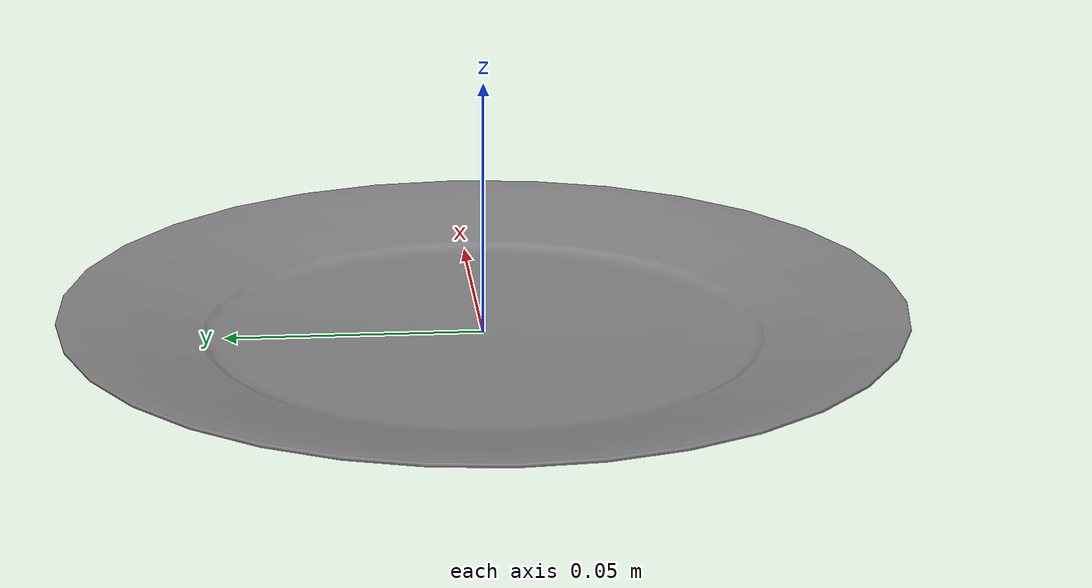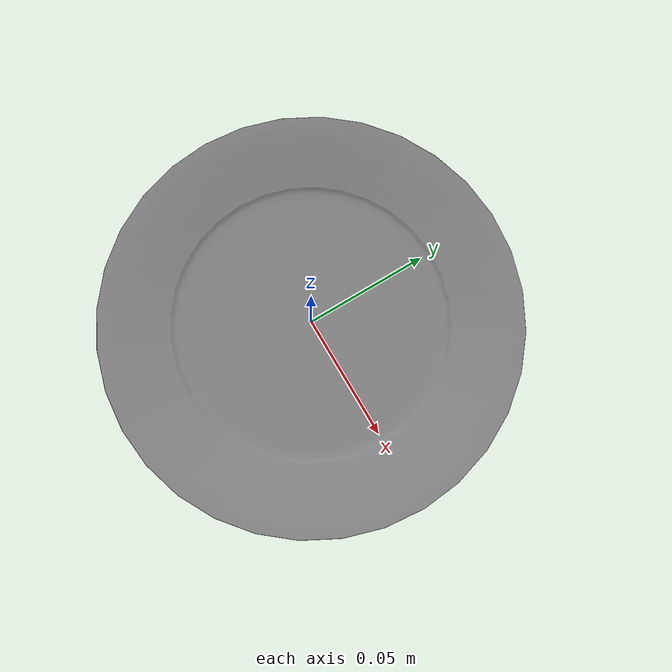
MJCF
<mujoco model="classic_plate_16cm">
    <compiler angle="radian" meshdir="../meshes/" texturedir="../textures/" autolimits="true" inertiafromgeom="false"/>
    <asset>
        <mesh name="ClassicPlate16cm" file="obj/ClassicPlate16cm.obj" />
        <mesh name="UCX_ClassicPlate16cm_001" file="stl/UCX_ClassicPlate16cm_001.stl" />
		<mesh name="UCX_ClassicPlate16cm_002" file="stl/UCX_ClassicPlate16cm_002.stl" />
		<mesh name="UCX_ClassicPlate16cm_003" file="stl/UCX_ClassicPlate16cm_003.stl" />
		<mesh name="UCX_ClassicPlate16cm_004" file="stl/UCX_ClassicPlate16cm_004.stl" />
		<mesh name="UCX_ClassicPlate16cm_005" file="stl/UCX_ClassicPlate16cm_005.stl" />
		<mesh name="UCX_ClassicPlate16cm_006" file="stl/UCX_ClassicPlate16cm_006.stl" />
		<mesh name="UCX_ClassicPlate16cm_007" file="stl/UCX_ClassicPlate16cm_007.stl" />
		<mesh name="UCX_ClassicPlate16cm_008" file="stl/UCX_ClassicPlate16cm_008.stl" />
		<mesh name="UCX_ClassicPlate16cm_009" file="stl/UCX_ClassicPlate16cm_009.stl" />
		<mesh name="UCX_ClassicPlate16cm_010" file="stl/UCX_ClassicPlate16cm_010.stl" />
		<mesh name="UCX_ClassicPlate16cm_011" file="stl/UCX_ClassicPlate16cm_011.stl" />
		<mesh name="UCX_ClassicPlate16cm_012" file="stl/UCX_ClassicPlate16cm_012.stl" />
		<mesh name="UCX_ClassicPlate16cm_013" file="stl/UCX_ClassicPlate16cm_013.stl" />
		<mesh name="UCX_ClassicPlate16cm_014" file="stl/UCX_ClassicPlate16cm_014.stl" />
		<mesh name="UCX_ClassicPlate16cm_015" file="stl/UCX_ClassicPlate16cm_015.stl" />
		<mesh name="UCX_ClassicPlate16cm_016" file="stl/UCX_ClassicPlate16cm_016.stl" />
		<mesh name="UCX_ClassicPlate16cm_017" file="stl/UCX_ClassicPlate16cm_017.stl" />
		<mesh name="UCX_ClassicPlate16cm_018" file="stl/UCX_ClassicPlate16cm_018.stl" />
		<mesh name="UCX_ClassicPlate16cm_019" file="stl/UCX_ClassicPlate16cm_019.stl" />
		<mesh name="UCX_ClassicPlate16cm_020" file="stl/UCX_ClassicPlate16cm_020.stl" />
		<mesh name="UCX_ClassicPlate16cm_021" file="stl/UCX_ClassicPlate16cm_021.stl" />
		<mesh name="UCX_ClassicPlate16cm_022" file="stl/UCX_ClassicPlate16cm_022.stl" />
		<mesh name="UCX_ClassicPlate16cm_023" file="stl/UCX_ClassicPlate16cm_023.stl" />
		<mesh name="UCX_ClassicPlate16cm_024" file="stl/UCX_ClassicPlate16cm_024.stl" />
		<mesh name="UCX_ClassicPlate16cm_025" file="stl/UCX_ClassicPlate16cm_025.stl" />
		<mesh name="UCX_ClassicPlate16cm_026" file="stl/UCX_ClassicPlate16cm_026.stl" />
		<mesh name="UCX_ClassicPlate16cm_027" file="stl/UCX_ClassicPlate16cm_027.stl" />
		<mesh name="UCX_ClassicPlate16cm_028" file="stl/UCX_ClassicPlate16cm_028.stl" />
		<mesh name="UCX_ClassicPlate16cm_029" file="stl/UCX_ClassicPlate16cm_029.stl" />
		<mesh name="UCX_ClassicPlate16cm_030" file="stl/UCX_ClassicPlate16cm_030.stl" />
		<mesh name="UCX_ClassicPlate16cm_031" file="stl/UCX_ClassicPlate16cm_031.stl" />
		<mesh name="UCX_ClassicPlate16cm_032" file="stl/UCX_ClassicPlate16cm_032.stl" />
		<mesh name="UCX_ClassicPlate16cm_033" file="stl/UCX_ClassicPlate16cm_033.stl" />
		<mesh name="UCX_ClassicPlate16cm_034" file="stl/UCX_ClassicPlate16cm_034.stl" />
		<mesh name="UCX_ClassicPlate16cm_035" file="stl/UCX_ClassicPlate16cm_035.stl" />
		<mesh name="UCX_ClassicPlate16cm_036" file="stl/UCX_ClassicPlate16cm_036.stl" />
		<mesh name="UCX_ClassicPlate16cm_037" file="stl/UCX_ClassicPlate16cm_037.stl" />
		<mesh name="UCX_ClassicPlate16cm_038" file="stl/UCX_ClassicPlate16cm_038.stl" />
		<mesh name="UCX_ClassicPlate16cm_039" file="stl/UCX_ClassicPlate16cm_039.stl" />
		<mesh name="UCX_ClassicPlate16cm_040" file="stl/UCX_ClassicPlate16cm_040.stl" />
		<mesh name="UCX_ClassicPlate16cm_041" file="stl/UCX_ClassicPlate16cm_041.stl" />
		<mesh name="UCX_ClassicPlate16cm_042" file="stl/UCX_ClassicPlate16cm_042.stl" />
		<mesh name="UCX_ClassicPlate16cm_043" file="stl/UCX_ClassicPlate16cm_043.stl" />
		<mesh name="UCX_ClassicPlate16cm_044" file="stl/UCX_ClassicPlate16cm_044.stl" />
		<mesh name="UCX_ClassicPlate16cm_045" file="stl/UCX_ClassicPlate16cm_045.stl" />
		<mesh name="UCX_ClassicPlate16cm_046" file="stl/UCX_ClassicPlate16cm_046.stl" />
		<mesh name="UCX_ClassicPlate16cm_047" file="stl/UCX_ClassicPlate16cm_047.stl" />
		<mesh name="UCX_ClassicPlate16cm_048" file="stl/UCX_ClassicPlate16cm_048.stl" />
		<mesh name="UCX_ClassicPlate16cm_049" file="stl/UCX_ClassicPlate16cm_049.stl" />
		<mesh name="UCX_ClassicPlate16cm_050" file="stl/UCX_ClassicPlate16cm_050.stl" />
		<mesh name="UCX_ClassicPlate16cm_051" file="stl/UCX_ClassicPlate16cm_051.stl" />
		<mesh name="UCX_ClassicPlate16cm_052" file="stl/UCX_ClassicPlate16cm_052.stl" />
		<mesh name="UCX_ClassicPlate16cm_053" file="stl/UCX_ClassicPlate16cm_053.stl" />
		<mesh name="UCX_ClassicPlate16cm_054" file="stl/UCX_ClassicPlate16cm_054.stl" />
		<mesh name="UCX_ClassicPlate16cm_055" file="stl/UCX_ClassicPlate16cm_055.stl" />
		<mesh name="UCX_ClassicPlate16cm_056" file="stl/UCX_ClassicPlate16cm_056.stl" />
		<mesh name="UCX_ClassicPlate16cm_057" file="stl/UCX_ClassicPlate16cm_057.stl" />
		<mesh name="UCX_ClassicPlate16cm_058" file="stl/UCX_ClassicPlate16cm_058.stl" />
		<mesh name="UCX_ClassicPlate16cm_059" file="stl/UCX_ClassicPlate16cm_059.stl" />
		<mesh name="UCX_ClassicPlate16cm_060" file="stl/UCX_ClassicPlate16cm_060.stl" />
		<mesh name="UCX_ClassicPlate16cm_061" file="stl/UCX_ClassicPlate16cm_061.stl" />
		<mesh name="UCX_ClassicPlate16cm_062" file="stl/UCX_ClassicPlate16cm_062.stl" />
		<mesh name="UCX_ClassicPlate16cm_063" file="stl/UCX_ClassicPlate16cm_063.stl" />
		<mesh name="UCX_ClassicPlate16cm_064" file="stl/UCX_ClassicPlate16cm_064.stl" />
		<mesh name="UCX_ClassicPlate16cm_065" file="stl/UCX_ClassicPlate16cm_065.stl" />
		<mesh name="UCX_ClassicPlate16cm_066" file="stl/UCX_ClassicPlate16cm_066.stl" />
		<mesh name="UCX_ClassicPlate16cm_067" file="stl/UCX_ClassicPlate16cm_067.stl" />
		<mesh name="UCX_ClassicPlate16cm_068" file="stl/UCX_ClassicPlate16cm_068.stl" />
		<mesh name="UCX_ClassicPlate16cm_069" file="stl/UCX_ClassicPlate16cm_069.stl" />
		<mesh name="UCX_ClassicPlate16cm_070" file="stl/UCX_ClassicPlate16cm_070.stl" />
		<mesh name="UCX_ClassicPlate16cm_071" file="stl/UCX_ClassicPlate16cm_071.stl" />
		<mesh name="UCX_ClassicPlate16cm_072" file="stl/UCX_ClassicPlate16cm_072.stl" />
		<mesh name="UCX_ClassicPlate16cm_073" file="stl/UCX_ClassicPlate16cm_073.stl" />
		<mesh name="UCX_ClassicPlate16cm_074" file="stl/UCX_ClassicPlate16cm_074.stl" />
		<mesh name="UCX_ClassicPlate16cm_075" file="stl/UCX_ClassicPlate16cm_075.stl" />
		<mesh name="UCX_ClassicPlate16cm_076" file="stl/UCX_ClassicPlate16cm_076.stl" />
		<mesh name="UCX_ClassicPlate16cm_077" file="stl/UCX_ClassicPlate16cm_077.stl" />
		<mesh name="UCX_ClassicPlate16cm_078" file="stl/UCX_ClassicPlate16cm_078.stl" />
		<mesh name="UCX_ClassicPlate16cm_079" file="stl/UCX_ClassicPlate16cm_079.stl" />
		<mesh name="UCX_ClassicPlate16cm_080" file="stl/UCX_ClassicPlate16cm_080.stl" />
		<mesh name="UCX_ClassicPlate16cm_081" file="stl/UCX_ClassicPlate16cm_081.stl" />
		<mesh name="UCX_ClassicPlate16cm_082" file="stl/UCX_ClassicPlate16cm_082.stl" />
		<mesh name="UCX_ClassicPlate16cm_083" file="stl/UCX_ClassicPlate16cm_083.stl" />
		<mesh name="UCX_ClassicPlate16cm_084" file="stl/UCX_ClassicPlate16cm_084.stl" />
		<mesh name="UCX_ClassicPlate16cm_085" file="stl/UCX_ClassicPlate16cm_085.stl" />
		<mesh name="UCX_ClassicPlate16cm_086" file="stl/UCX_ClassicPlate16cm_086.stl" />
		<mesh name="UCX_ClassicPlate16cm_087" file="stl/UCX_ClassicPlate16cm_087.stl" />
		<mesh name="UCX_ClassicPlate16cm_088" file="stl/UCX_ClassicPlate16cm_088.stl" />
		<mesh name="UCX_ClassicPlate16cm_089" file="stl/UCX_ClassicPlate16cm_089.stl" />
		<mesh name="UCX_ClassicPlate16cm_090" file="stl/UCX_ClassicPlate16cm_090.stl" />
		<mesh name="UCX_ClassicPlate16cm_091" file="stl/UCX_ClassicPlate16cm_091.stl" />
		<mesh name="UCX_ClassicPlate16cm_092" file="stl/UCX_ClassicPlate16cm_092.stl" />
		<mesh name="UCX_ClassicPlate16cm_093" file="stl/UCX_ClassicPlate16cm_093.stl" />
		<mesh name="UCX_ClassicPlate16cm_094" file="stl/UCX_ClassicPlate16cm_094.stl" />
		<mesh name="UCX_ClassicPlate16cm_095" file="stl/UCX_ClassicPlate16cm_095.stl" />
		<mesh name="UCX_ClassicPlate16cm_096" file="stl/UCX_ClassicPlate16cm_096.stl" />
		<mesh name="UCX_ClassicPlate16cm_097" file="stl/UCX_ClassicPlate16cm_097.stl" />
		<mesh name="UCX_ClassicPlate16cm_098" file="stl/UCX_ClassicPlate16cm_098.stl" />
		<mesh name="UCX_ClassicPlate16cm_099" file="stl/UCX_ClassicPlate16cm_099.stl" />
		<mesh name="UCX_ClassicPlate16cm_100" file="stl/UCX_ClassicPlate16cm_100.stl" />
		<mesh name="UCX_ClassicPlate16cm_101" file="stl/UCX_ClassicPlate16cm_101.stl" />
		<mesh name="UCX_ClassicPlate16cm_102" file="stl/UCX_ClassicPlate16cm_102.stl" />
		<mesh name="UCX_ClassicPlate16cm_103" file="stl/UCX_ClassicPlate16cm_103.stl" />
		<mesh name="UCX_ClassicPlate16cm_104" file="stl/UCX_ClassicPlate16cm_104.stl" />
		<mesh name="UCX_ClassicPlate16cm_105" file="stl/UCX_ClassicPlate16cm_105.stl" />
		<mesh name="UCX_ClassicPlate16cm_106" file="stl/UCX_ClassicPlate16cm_106.stl" />
		<mesh name="UCX_ClassicPlate16cm_107" file="stl/UCX_ClassicPlate16cm_107.stl" />
		<mesh name="UCX_ClassicPlate16cm_108" file="stl/UCX_ClassicPlate16cm_108.stl" />
		<mesh name="UCX_ClassicPlate16cm_109" file="stl/UCX_ClassicPlate16cm_109.stl" />
		<mesh name="UCX_ClassicPlate16cm_110" file="stl/UCX_ClassicPlate16cm_110.stl" />
		<mesh name="UCX_ClassicPlate16cm_111" file="stl/UCX_ClassicPlate16cm_111.stl" />
		<mesh name="UCX_ClassicPlate16cm_112" file="stl/UCX_ClassicPlate16cm_112.stl" />
		<mesh name="UCX_ClassicPlate16cm_113" file="stl/UCX_ClassicPlate16cm_113.stl" />
		<mesh name="UCX_ClassicPlate16cm_114" file="stl/UCX_ClassicPlate16cm_114.stl" />
		<mesh name="UCX_ClassicPlate16cm_115" file="stl/UCX_ClassicPlate16cm_115.stl" />
		<mesh name="UCX_ClassicPlate16cm_116" file="stl/UCX_ClassicPlate16cm_116.stl" />
		<mesh name="UCX_ClassicPlate16cm_117" file="stl/UCX_ClassicPlate16cm_117.stl" />
		<mesh name="UCX_ClassicPlate16cm_118" file="stl/UCX_ClassicPlate16cm_118.stl" />
		<mesh name="UCX_ClassicPlate16cm_119" file="stl/UCX_ClassicPlate16cm_119.stl" />
		<mesh name="UCX_ClassicPlate16cm_120" file="stl/UCX_ClassicPlate16cm_120.stl" />
		<mesh name="UCX_ClassicPlate16cm_121" file="stl/UCX_ClassicPlate16cm_121.stl" />
		<mesh name="UCX_ClassicPlate16cm_122" file="stl/UCX_ClassicPlate16cm_122.stl" />
		<mesh name="UCX_ClassicPlate16cm_123" file="stl/UCX_ClassicPlate16cm_123.stl" />
		<mesh name="UCX_ClassicPlate16cm_124" file="stl/UCX_ClassicPlate16cm_124.stl" />
		<mesh name="UCX_ClassicPlate16cm_125" file="stl/UCX_ClassicPlate16cm_125.stl" />
		<mesh name="UCX_ClassicPlate16cm_126" file="stl/UCX_ClassicPlate16cm_126.stl" />
		<mesh name="UCX_ClassicPlate16cm_127" file="stl/UCX_ClassicPlate16cm_127.stl" />
		<mesh name="UCX_ClassicPlate16cm_128" file="stl/UCX_ClassicPlate16cm_128.stl" />
		<mesh name="UCX_ClassicPlate16cm_129" file="stl/UCX_ClassicPlate16cm_129.stl" />
    </asset>
    <default>
        <default class="classic_plate_16cm_visual">
            <geom contype="0" conaffinity="0" />
        </default>
        <default class="classic_plate_16cm_collision">
            <geom rgba="0.9 0.9 0.9 0.0" />
        </default>
    </default>
    <worldbody>
        <body name="classic_plate_16cm">
            <freejoint />
            <inertial mass="0.018585756421089172" pos="-7.083365926519036e-05 6.187615753106002e-08 0.00010110304720001295" diaginertia="2.932031566160731e-05 2.932080860773567e-05 5.842446626047604e-05"/>
            <geom name="ClassicPlate16cm" pos="0.0 0.0 0.0" quat="1.0 0.0 0.0 0.0" type="mesh" mesh="ClassicPlate16cm" class="classic_plate_16cm_visual" />
            <geom name="UCX_ClassicPlate16cm_001" type="mesh" pos="0.0 0.0 0.0" quat="1.0 0.0 0.0 0.0" mesh="UCX_ClassicPlate16cm_001" class="classic_plate_16cm_collision"/>
            <geom name="UCX_ClassicPlate16cm_002" type="mesh" pos="0.0 0.0 0.0" quat="1.0 0.0 0.0 0.0" mesh="UCX_ClassicPlate16cm_002" class="classic_plate_16cm_collision"/>
            <geom name="UCX_ClassicPlate16cm_003" type="mesh" pos="0.0 0.0 0.0" quat="1.0 0.0 0.0 0.0" mesh="UCX_ClassicPlate16cm_003" class="classic_plate_16cm_collision"/>
            <geom name="UCX_ClassicPlate16cm_004" type="mesh" pos="0.0 0.0 0.0" quat="1.0 0.0 0.0 0.0" mesh="UCX_ClassicPlate16cm_004" class="classic_plate_16cm_collision"/>
            <geom name="UCX_ClassicPlate16cm_005" type="mesh" pos="0.0 0.0 0.0" quat="1.0 0.0 0.0 0.0" mesh="UCX_ClassicPlate16cm_005" class="classic_plate_16cm_collision"/>
            <geom name="UCX_ClassicPlate16cm_006" type="mesh" pos="0.0 0.0 0.0" quat="1.0 0.0 0.0 0.0" mesh="UCX_ClassicPlate16cm_006" class="classic_plate_16cm_collision"/>
            <geom name="UCX_ClassicPlate16cm_007" type="mesh" pos="0.0 0.0 0.0" quat="1.0 0.0 0.0 0.0" mesh="UCX_ClassicPlate16cm_007" class="classic_plate_16cm_collision"/>
            <geom name="UCX_ClassicPlate16cm_008" type="mesh" pos="0.0 0.0 0.0" quat="1.0 0.0 0.0 0.0" mesh="UCX_ClassicPlate16cm_008" class="classic_plate_16cm_collision"/>
            <geom name="UCX_ClassicPlate16cm_009" type="mesh" pos="0.0 0.0 0.0" quat="1.0 0.0 0.0 0.0" mesh="UCX_ClassicPlate16cm_009" class="classic_plate_16cm_collision"/>
            <geom name="UCX_ClassicPlate16cm_010" type="mesh" pos="0.0 0.0 0.0" quat="1.0 0.0 0.0 0.0" mesh="UCX_ClassicPlate16cm_010" class="classic_plate_16cm_collision"/>
            <geom name="UCX_ClassicPlate16cm_011" type="mesh" pos="0.0 0.0 0.0" quat="1.0 0.0 0.0 0.0" mesh="UCX_ClassicPlate16cm_011" class="classic_plate_16cm_collision"/>
            <geom name="UCX_ClassicPlate16cm_012" type="mesh" pos="0.0 0.0 0.0" quat="1.0 0.0 0.0 0.0" mesh="UCX_ClassicPlate16cm_012" class="classic_plate_16cm_collision"/>
            <geom name="UCX_ClassicPlate16cm_013" type="mesh" pos="0.0 0.0 0.0" quat="1.0 0.0 0.0 0.0" mesh="UCX_ClassicPlate16cm_013" class="classic_plate_16cm_collision"/>
            <geom name="UCX_ClassicPlate16cm_014" type="mesh" pos="0.0 0.0 0.0" quat="1.0 0.0 0.0 0.0" mesh="UCX_ClassicPlate16cm_014" class="classic_plate_16cm_collision"/>
            <geom name="UCX_ClassicPlate16cm_015" type="mesh" pos="0.0 0.0 0.0" quat="1.0 0.0 0.0 0.0" mesh="UCX_ClassicPlate16cm_015" class="classic_plate_16cm_collision"/>
            <geom name="UCX_ClassicPlate16cm_016" type="mesh" pos="0.0 0.0 0.0" quat="1.0 0.0 0.0 0.0" mesh="UCX_ClassicPlate16cm_016" class="classic_plate_16cm_collision"/>
            <geom name="UCX_ClassicPlate16cm_017" type="mesh" pos="0.0 0.0 0.0" quat="1.0 0.0 0.0 0.0" mesh="UCX_ClassicPlate16cm_017" class="classic_plate_16cm_collision"/>
            <geom name="UCX_ClassicPlate16cm_018" type="mesh" pos="0.0 0.0 0.0" quat="1.0 0.0 0.0 0.0" mesh="UCX_ClassicPlate16cm_018" class="classic_plate_16cm_collision"/>
            <geom name="UCX_ClassicPlate16cm_019" type="mesh" pos="0.0 0.0 0.0" quat="1.0 0.0 0.0 0.0" mesh="UCX_ClassicPlate16cm_019" class="classic_plate_16cm_collision"/>
            <geom name="UCX_ClassicPlate16cm_020" type="mesh" pos="0.0 0.0 0.0" quat="1.0 0.0 0.0 0.0" mesh="UCX_ClassicPlate16cm_020" class="classic_plate_16cm_collision"/>
            <geom name="UCX_ClassicPlate16cm_021" type="mesh" pos="0.0 0.0 0.0" quat="1.0 0.0 0.0 0.0" mesh="UCX_ClassicPlate16cm_021" class="classic_plate_16cm_collision"/>
            <geom name="UCX_ClassicPlate16cm_022" type="mesh" pos="0.0 0.0 0.0" quat="1.0 0.0 0.0 0.0" mesh="UCX_ClassicPlate16cm_022" class="classic_plate_16cm_collision"/>
            <geom name="UCX_ClassicPlate16cm_023" type="mesh" pos="0.0 0.0 0.0" quat="1.0 0.0 0.0 0.0" mesh="UCX_ClassicPlate16cm_023" class="classic_plate_16cm_collision"/>
            <geom name="UCX_ClassicPlate16cm_024" type="mesh" pos="0.0 0.0 0.0" quat="1.0 0.0 0.0 0.0" mesh="UCX_ClassicPlate16cm_024" class="classic_plate_16cm_collision"/>
            <geom name="UCX_ClassicPlate16cm_025" type="mesh" pos="0.0 0.0 0.0" quat="1.0 0.0 0.0 0.0" mesh="UCX_ClassicPlate16cm_025" class="classic_plate_16cm_collision"/>
            <geom name="UCX_ClassicPlate16cm_026" type="mesh" pos="0.0 0.0 0.0" quat="1.0 0.0 0.0 0.0" mesh="UCX_ClassicPlate16cm_026" class="classic_plate_16cm_collision"/>
            <geom name="UCX_ClassicPlate16cm_027" type="mesh" pos="0.0 0.0 0.0" quat="1.0 0.0 0.0 0.0" mesh="UCX_ClassicPlate16cm_027" class="classic_plate_16cm_collision"/>
            <geom name="UCX_ClassicPlate16cm_028" type="mesh" pos="0.0 0.0 0.0" quat="1.0 0.0 0.0 0.0" mesh="UCX_ClassicPlate16cm_028" class="classic_plate_16cm_collision"/>
            <geom name="UCX_ClassicPlate16cm_029" type="mesh" pos="0.0 0.0 0.0" quat="1.0 0.0 0.0 0.0" mesh="UCX_ClassicPlate16cm_029" class="classic_plate_16cm_collision"/>
            <geom name="UCX_ClassicPlate16cm_030" type="mesh" pos="0.0 0.0 0.0" quat="1.0 0.0 0.0 0.0" mesh="UCX_ClassicPlate16cm_030" class="classic_plate_16cm_collision"/>
            <geom name="UCX_ClassicPlate16cm_031" type="mesh" pos="0.0 0.0 0.0" quat="1.0 0.0 0.0 0.0" mesh="UCX_ClassicPlate16cm_031" class="classic_plate_16cm_collision"/>
            <geom name="UCX_ClassicPlate16cm_032" type="mesh" pos="0.0 0.0 0.0" quat="1.0 0.0 0.0 0.0" mesh="UCX_ClassicPlate16cm_032" class="classic_plate_16cm_collision"/>
            <geom name="UCX_ClassicPlate16cm_033" type="mesh" pos="0.0 0.0 0.0" quat="1.0 0.0 0.0 0.0" mesh="UCX_ClassicPlate16cm_033" class="classic_plate_16cm_collision"/>
            <geom name="UCX_ClassicPlate16cm_034" type="mesh" pos="0.0 0.0 0.0" quat="1.0 0.0 0.0 0.0" mesh="UCX_ClassicPlate16cm_034" class="classic_plate_16cm_collision"/>
            <geom name="UCX_ClassicPlate16cm_035" type="mesh" pos="0.0 0.0 0.0" quat="1.0 0.0 0.0 0.0" mesh="UCX_ClassicPlate16cm_035" class="classic_plate_16cm_collision"/>
            <geom name="UCX_ClassicPlate16cm_036" type="mesh" pos="0.0 0.0 0.0" quat="1.0 0.0 0.0 0.0" mesh="UCX_ClassicPlate16cm_036" class="classic_plate_16cm_collision"/>
            <geom name="UCX_ClassicPlate16cm_037" type="mesh" pos="0.0 0.0 0.0" quat="1.0 0.0 0.0 0.0" mesh="UCX_ClassicPlate16cm_037" class="classic_plate_16cm_collision"/>
            <geom name="UCX_ClassicPlate16cm_038" type="mesh" pos="0.0 0.0 0.0" quat="1.0 0.0 0.0 0.0" mesh="UCX_ClassicPlate16cm_038" class="classic_plate_16cm_collision"/>
            <geom name="UCX_ClassicPlate16cm_039" type="mesh" pos="0.0 0.0 0.0" quat="1.0 0.0 0.0 0.0" mesh="UCX_ClassicPlate16cm_039" class="classic_plate_16cm_collision"/>
            <geom name="UCX_ClassicPlate16cm_040" type="mesh" pos="0.0 0.0 0.0" quat="1.0 0.0 0.0 0.0" mesh="UCX_ClassicPlate16cm_040" class="classic_plate_16cm_collision"/>
            <geom name="UCX_ClassicPlate16cm_041" type="mesh" pos="0.0 0.0 0.0" quat="1.0 0.0 0.0 0.0" mesh="UCX_ClassicPlate16cm_041" class="classic_plate_16cm_collision"/>
            <geom name="UCX_ClassicPlate16cm_042" type="mesh" pos="0.0 0.0 0.0" quat="1.0 0.0 0.0 0.0" mesh="UCX_ClassicPlate16cm_042" class="classic_plate_16cm_collision"/>
            <geom name="UCX_ClassicPlate16cm_043" type="mesh" pos="0.0 0.0 0.0" quat="1.0 0.0 0.0 0.0" mesh="UCX_ClassicPlate16cm_043" class="classic_plate_16cm_collision"/>
            <geom name="UCX_ClassicPlate16cm_044" type="mesh" pos="0.0 0.0 0.0" quat="1.0 0.0 0.0 0.0" mesh="UCX_ClassicPlate16cm_044" class="classic_plate_16cm_collision"/>
            <geom name="UCX_ClassicPlate16cm_045" type="mesh" pos="0.0 0.0 0.0" quat="1.0 0.0 0.0 0.0" mesh="UCX_ClassicPlate16cm_045" class="classic_plate_16cm_collision"/>
            <geom name="UCX_ClassicPlate16cm_046" type="mesh" pos="0.0 0.0 0.0" quat="1.0 0.0 0.0 0.0" mesh="UCX_ClassicPlate16cm_046" class="classic_plate_16cm_collision"/>
            <geom name="UCX_ClassicPlate16cm_047" type="mesh" pos="0.0 0.0 0.0" quat="1.0 0.0 0.0 0.0" mesh="UCX_ClassicPlate16cm_047" class="classic_plate_16cm_collision"/>
            <geom name="UCX_ClassicPlate16cm_048" type="mesh" pos="0.0 0.0 0.0" quat="1.0 0.0 0.0 0.0" mesh="UCX_ClassicPlate16cm_048" class="classic_plate_16cm_collision"/>
            <geom name="UCX_ClassicPlate16cm_049" type="mesh" pos="0.0 0.0 0.0" quat="1.0 0.0 0.0 0.0" mesh="UCX_ClassicPlate16cm_049" class="classic_plate_16cm_collision"/>
            <geom name="UCX_ClassicPlate16cm_050" type="mesh" pos="0.0 0.0 0.0" quat="1.0 0.0 0.0 0.0" mesh="UCX_ClassicPlate16cm_050" class="classic_plate_16cm_collision"/>
            <geom name="UCX_ClassicPlate16cm_051" type="mesh" pos="0.0 0.0 0.0" quat="1.0 0.0 0.0 0.0" mesh="UCX_ClassicPlate16cm_051" class="classic_plate_16cm_collision"/>
            <geom name="UCX_ClassicPlate16cm_052" type="mesh" pos="0.0 0.0 0.0" quat="1.0 0.0 0.0 0.0" mesh="UCX_ClassicPlate16cm_052" class="classic_plate_16cm_collision"/>
            <geom name="UCX_ClassicPlate16cm_053" type="mesh" pos="0.0 0.0 0.0" quat="1.0 0.0 0.0 0.0" mesh="UCX_ClassicPlate16cm_053" class="classic_plate_16cm_collision"/>
            <geom name="UCX_ClassicPlate16cm_054" type="mesh" pos="0.0 0.0 0.0" quat="1.0 0.0 0.0 0.0" mesh="UCX_ClassicPlate16cm_054" class="classic_plate_16cm_collision"/>
            <geom name="UCX_ClassicPlate16cm_055" type="mesh" pos="0.0 0.0 0.0" quat="1.0 0.0 0.0 0.0" mesh="UCX_ClassicPlate16cm_055" class="classic_plate_16cm_collision"/>
            <geom name="UCX_ClassicPlate16cm_056" type="mesh" pos="0.0 0.0 0.0" quat="1.0 0.0 0.0 0.0" mesh="UCX_ClassicPlate16cm_056" class="classic_plate_16cm_collision"/>
            <geom name="UCX_ClassicPlate16cm_057" type="mesh" pos="0.0 0.0 0.0" quat="1.0 0.0 0.0 0.0" mesh="UCX_ClassicPlate16cm_057" class="classic_plate_16cm_collision"/>
            <geom name="UCX_ClassicPlate16cm_058" type="mesh" pos="0.0 0.0 0.0" quat="1.0 0.0 0.0 0.0" mesh="UCX_ClassicPlate16cm_058" class="classic_plate_16cm_collision"/>
            <geom name="UCX_ClassicPlate16cm_059" type="mesh" pos="0.0 0.0 0.0" quat="1.0 0.0 0.0 0.0" mesh="UCX_ClassicPlate16cm_059" class="classic_plate_16cm_collision"/>
            <geom name="UCX_ClassicPlate16cm_060" type="mesh" pos="0.0 0.0 0.0" quat="1.0 0.0 0.0 0.0" mesh="UCX_ClassicPlate16cm_060" class="classic_plate_16cm_collision"/>
            <geom name="UCX_ClassicPlate16cm_061" type="mesh" pos="0.0 0.0 0.0" quat="1.0 0.0 0.0 0.0" mesh="UCX_ClassicPlate16cm_061" class="classic_plate_16cm_collision"/>
            <geom name="UCX_ClassicPlate16cm_062" type="mesh" pos="0.0 0.0 0.0" quat="1.0 0.0 0.0 0.0" mesh="UCX_ClassicPlate16cm_062" class="classic_plate_16cm_collision"/>
            <geom name="UCX_ClassicPlate16cm_063" type="mesh" pos="0.0 0.0 0.0" quat="1.0 0.0 0.0 0.0" mesh="UCX_ClassicPlate16cm_063" class="classic_plate_16cm_collision"/>
            <geom name="UCX_ClassicPlate16cm_064" type="mesh" pos="0.0 0.0 0.0" quat="1.0 0.0 0.0 0.0" mesh="UCX_ClassicPlate16cm_064" class="classic_plate_16cm_collision"/>
            <geom name="UCX_ClassicPlate16cm_065" type="mesh" pos="0.0 0.0 0.0" quat="1.0 0.0 0.0 0.0" mesh="UCX_ClassicPlate16cm_065" class="classic_plate_16cm_collision"/>
            <geom name="UCX_ClassicPlate16cm_066" type="mesh" pos="0.0 0.0 0.0" quat="1.0 0.0 0.0 0.0" mesh="UCX_ClassicPlate16cm_066" class="classic_plate_16cm_collision"/>
            <geom name="UCX_ClassicPlate16cm_067" type="mesh" pos="0.0 0.0 0.0" quat="1.0 0.0 0.0 0.0" mesh="UCX_ClassicPlate16cm_067" class="classic_plate_16cm_collision"/>
            <geom name="UCX_ClassicPlate16cm_068" type="mesh" pos="0.0 0.0 0.0" quat="1.0 0.0 0.0 0.0" mesh="UCX_ClassicPlate16cm_068" class="classic_plate_16cm_collision"/>
            <geom name="UCX_ClassicPlate16cm_069" type="mesh" pos="0.0 0.0 0.0" quat="1.0 0.0 0.0 0.0" mesh="UCX_ClassicPlate16cm_069" class="classic_plate_16cm_collision"/>
            <geom name="UCX_ClassicPlate16cm_070" type="mesh" pos="0.0 0.0 0.0" quat="1.0 0.0 0.0 0.0" mesh="UCX_ClassicPlate16cm_070" class="classic_plate_16cm_collision"/>
            <geom name="UCX_ClassicPlate16cm_071" type="mesh" pos="0.0 0.0 0.0" quat="1.0 0.0 0.0 0.0" mesh="UCX_ClassicPlate16cm_071" class="classic_plate_16cm_collision"/>
            <geom name="UCX_ClassicPlate16cm_072" type="mesh" pos="0.0 0.0 0.0" quat="1.0 0.0 0.0 0.0" mesh="UCX_ClassicPlate16cm_072" class="classic_plate_16cm_collision"/>
            <geom name="UCX_ClassicPlate16cm_073" type="mesh" pos="0.0 0.0 0.0" quat="1.0 0.0 0.0 0.0" mesh="UCX_ClassicPlate16cm_073" class="classic_plate_16cm_collision"/>
            <geom name="UCX_ClassicPlate16cm_074" type="mesh" pos="0.0 0.0 0.0" quat="1.0 0.0 0.0 0.0" mesh="UCX_ClassicPlate16cm_074" class="classic_plate_16cm_collision"/>
            <geom name="UCX_ClassicPlate16cm_075" type="mesh" pos="0.0 0.0 0.0" quat="1.0 0.0 0.0 0.0" mesh="UCX_ClassicPlate16cm_075" class="classic_plate_16cm_collision"/>
            <geom name="UCX_ClassicPlate16cm_076" type="mesh" pos="0.0 0.0 0.0" quat="1.0 0.0 0.0 0.0" mesh="UCX_ClassicPlate16cm_076" class="classic_plate_16cm_collision"/>
            <geom name="UCX_ClassicPlate16cm_077" type="mesh" pos="0.0 0.0 0.0" quat="1.0 0.0 0.0 0.0" mesh="UCX_ClassicPlate16cm_077" class="classic_plate_16cm_collision"/>
            <geom name="UCX_ClassicPlate16cm_078" type="mesh" pos="0.0 0.0 0.0" quat="1.0 0.0 0.0 0.0" mesh="UCX_ClassicPlate16cm_078" class="classic_plate_16cm_collision"/>
            <geom name="UCX_ClassicPlate16cm_079" type="mesh" pos="0.0 0.0 0.0" quat="1.0 0.0 0.0 0.0" mesh="UCX_ClassicPlate16cm_079" class="classic_plate_16cm_collision"/>
            <geom name="UCX_ClassicPlate16cm_080" type="mesh" pos="0.0 0.0 0.0" quat="1.0 0.0 0.0 0.0" mesh="UCX_ClassicPlate16cm_080" class="classic_plate_16cm_collision"/>
            <geom name="UCX_ClassicPlate16cm_081" type="mesh" pos="0.0 0.0 0.0" quat="1.0 0.0 0.0 0.0" mesh="UCX_ClassicPlate16cm_081" class="classic_plate_16cm_collision"/>
            <geom name="UCX_ClassicPlate16cm_082" type="mesh" pos="0.0 0.0 0.0" quat="1.0 0.0 0.0 0.0" mesh="UCX_ClassicPlate16cm_082" class="classic_plate_16cm_collision"/>
            <geom name="UCX_ClassicPlate16cm_083" type="mesh" pos="0.0 0.0 0.0" quat="1.0 0.0 0.0 0.0" mesh="UCX_ClassicPlate16cm_083" class="classic_plate_16cm_collision"/>
            <geom name="UCX_ClassicPlate16cm_084" type="mesh" pos="0.0 0.0 0.0" quat="1.0 0.0 0.0 0.0" mesh="UCX_ClassicPlate16cm_084" class="classic_plate_16cm_collision"/>
            <geom name="UCX_ClassicPlate16cm_085" type="mesh" pos="0.0 0.0 0.0" quat="1.0 0.0 0.0 0.0" mesh="UCX_ClassicPlate16cm_085" class="classic_plate_16cm_collision"/>
            <geom name="UCX_ClassicPlate16cm_086" type="mesh" pos="0.0 0.0 0.0" quat="1.0 0.0 0.0 0.0" mesh="UCX_ClassicPlate16cm_086" class="classic_plate_16cm_collision"/>
            <geom name="UCX_ClassicPlate16cm_087" type="mesh" pos="0.0 0.0 0.0" quat="1.0 0.0 0.0 0.0" mesh="UCX_ClassicPlate16cm_087" class="classic_plate_16cm_collision"/>
            <geom name="UCX_ClassicPlate16cm_088" type="mesh" pos="0.0 0.0 0.0" quat="1.0 0.0 0.0 0.0" mesh="UCX_ClassicPlate16cm_088" class="classic_plate_16cm_collision"/>
            <geom name="UCX_ClassicPlate16cm_089" type="mesh" pos="0.0 0.0 0.0" quat="1.0 0.0 0.0 0.0" mesh="UCX_ClassicPlate16cm_089" class="classic_plate_16cm_collision"/>
            <geom name="UCX_ClassicPlate16cm_090" type="mesh" pos="0.0 0.0 0.0" quat="1.0 0.0 0.0 0.0" mesh="UCX_ClassicPlate16cm_090" class="classic_plate_16cm_collision"/>
            <geom name="UCX_ClassicPlate16cm_091" type="mesh" pos="0.0 0.0 0.0" quat="1.0 0.0 0.0 0.0" mesh="UCX_ClassicPlate16cm_091" class="classic_plate_16cm_collision"/>
            <geom name="UCX_ClassicPlate16cm_092" type="mesh" pos="0.0 0.0 0.0" quat="1.0 0.0 0.0 0.0" mesh="UCX_ClassicPlate16cm_092" class="classic_plate_16cm_collision"/>
            <geom name="UCX_ClassicPlate16cm_093" type="mesh" pos="0.0 0.0 0.0" quat="1.0 0.0 0.0 0.0" mesh="UCX_ClassicPlate16cm_093" class="classic_plate_16cm_collision"/>
            <geom name="UCX_ClassicPlate16cm_094" type="mesh" pos="0.0 0.0 0.0" quat="1.0 0.0 0.0 0.0" mesh="UCX_ClassicPlate16cm_094" class="classic_plate_16cm_collision"/>
            <geom name="UCX_ClassicPlate16cm_095" type="mesh" pos="0.0 0.0 0.0" quat="1.0 0.0 0.0 0.0" mesh="UCX_ClassicPlate16cm_095" class="classic_plate_16cm_collision"/>
            <geom name="UCX_ClassicPlate16cm_096" type="mesh" pos="0.0 0.0 0.0" quat="1.0 0.0 0.0 0.0" mesh="UCX_ClassicPlate16cm_096" class="classic_plate_16cm_collision"/>
            <geom name="UCX_ClassicPlate16cm_097" type="mesh" pos="0.0 0.0 0.0" quat="1.0 0.0 0.0 0.0" mesh="UCX_ClassicPlate16cm_097" class="classic_plate_16cm_collision"/>
            <geom name="UCX_ClassicPlate16cm_098" type="mesh" pos="0.0 0.0 0.0" quat="1.0 0.0 0.0 0.0" mesh="UCX_ClassicPlate16cm_098" class="classic_plate_16cm_collision"/>
            <geom name="UCX_ClassicPlate16cm_099" type="mesh" pos="0.0 0.0 0.0" quat="1.0 0.0 0.0 0.0" mesh="UCX_ClassicPlate16cm_099" class="classic_plate_16cm_collision"/>
            <geom name="UCX_ClassicPlate16cm_100" type="mesh" pos="0.0 0.0 0.0" quat="1.0 0.0 0.0 0.0" mesh="UCX_ClassicPlate16cm_100" class="classic_plate_16cm_collision"/>
            <geom name="UCX_ClassicPlate16cm_101" type="mesh" pos="0.0 0.0 0.0" quat="1.0 0.0 0.0 0.0" mesh="UCX_ClassicPlate16cm_101" class="classic_plate_16cm_collision"/>
            <geom name="UCX_ClassicPlate16cm_102" type="mesh" pos="0.0 0.0 0.0" quat="1.0 0.0 0.0 0.0" mesh="UCX_ClassicPlate16cm_102" class="classic_plate_16cm_collision"/>
            <geom name="UCX_ClassicPlate16cm_103" type="mesh" pos="0.0 0.0 0.0" quat="1.0 0.0 0.0 0.0" mesh="UCX_ClassicPlate16cm_103" class="classic_plate_16cm_collision"/>
            <geom name="UCX_ClassicPlate16cm_104" type="mesh" pos="0.0 0.0 0.0" quat="1.0 0.0 0.0 0.0" mesh="UCX_ClassicPlate16cm_104" class="classic_plate_16cm_collision"/>
            <geom name="UCX_ClassicPlate16cm_105" type="mesh" pos="0.0 0.0 0.0" quat="1.0 0.0 0.0 0.0" mesh="UCX_ClassicPlate16cm_105" class="classic_plate_16cm_collision"/>
            <geom name="UCX_ClassicPlate16cm_106" type="mesh" pos="0.0 0.0 0.0" quat="1.0 0.0 0.0 0.0" mesh="UCX_ClassicPlate16cm_106" class="classic_plate_16cm_collision"/>
            <geom name="UCX_ClassicPlate16cm_107" type="mesh" pos="0.0 0.0 0.0" quat="1.0 0.0 0.0 0.0" mesh="UCX_ClassicPlate16cm_107" class="classic_plate_16cm_collision"/>
            <geom name="UCX_ClassicPlate16cm_108" type="mesh" pos="0.0 0.0 0.0" quat="1.0 0.0 0.0 0.0" mesh="UCX_ClassicPlate16cm_108" class="classic_plate_16cm_collision"/>
            <geom name="UCX_ClassicPlate16cm_109" type="mesh" pos="0.0 0.0 0.0" quat="1.0 0.0 0.0 0.0" mesh="UCX_ClassicPlate16cm_109" class="classic_plate_16cm_collision"/>
            <geom name="UCX_ClassicPlate16cm_110" type="mesh" pos="0.0 0.0 0.0" quat="1.0 0.0 0.0 0.0" mesh="UCX_ClassicPlate16cm_110" class="classic_plate_16cm_collision"/>
            <geom name="UCX_ClassicPlate16cm_111" type="mesh" pos="0.0 0.0 0.0" quat="1.0 0.0 0.0 0.0" mesh="UCX_ClassicPlate16cm_111" class="classic_plate_16cm_collision"/>
            <geom name="UCX_ClassicPlate16cm_112" type="mesh" pos="0.0 0.0 0.0" quat="1.0 0.0 0.0 0.0" mesh="UCX_ClassicPlate16cm_112" class="classic_plate_16cm_collision"/>
            <geom name="UCX_ClassicPlate16cm_113" type="mesh" pos="0.0 0.0 0.0" quat="1.0 0.0 0.0 0.0" mesh="UCX_ClassicPlate16cm_113" class="classic_plate_16cm_collision"/>
            <geom name="UCX_ClassicPlate16cm_114" type="mesh" pos="0.0 0.0 0.0" quat="1.0 0.0 0.0 0.0" mesh="UCX_ClassicPlate16cm_114" class="classic_plate_16cm_collision"/>
            <geom name="UCX_ClassicPlate16cm_115" type="mesh" pos="0.0 0.0 0.0" quat="1.0 0.0 0.0 0.0" mesh="UCX_ClassicPlate16cm_115" class="classic_plate_16cm_collision"/>
            <geom name="UCX_ClassicPlate16cm_116" type="mesh" pos="0.0 0.0 0.0" quat="1.0 0.0 0.0 0.0" mesh="UCX_ClassicPlate16cm_116" class="classic_plate_16cm_collision"/>
            <geom name="UCX_ClassicPlate16cm_117" type="mesh" pos="0.0 0.0 0.0" quat="1.0 0.0 0.0 0.0" mesh="UCX_ClassicPlate16cm_117" class="classic_plate_16cm_collision"/>
            <geom name="UCX_ClassicPlate16cm_118" type="mesh" pos="0.0 0.0 0.0" quat="1.0 0.0 0.0 0.0" mesh="UCX_ClassicPlate16cm_118" class="classic_plate_16cm_collision"/>
            <geom name="UCX_ClassicPlate16cm_119" type="mesh" pos="0.0 0.0 0.0" quat="1.0 0.0 0.0 0.0" mesh="UCX_ClassicPlate16cm_119" class="classic_plate_16cm_collision"/>
            <geom name="UCX_ClassicPlate16cm_120" type="mesh" pos="0.0 0.0 0.0" quat="1.0 0.0 0.0 0.0" mesh="UCX_ClassicPlate16cm_120" class="classic_plate_16cm_collision"/>
            <geom name="UCX_ClassicPlate16cm_121" type="mesh" pos="0.0 0.0 0.0" quat="1.0 0.0 0.0 0.0" mesh="UCX_ClassicPlate16cm_121" class="classic_plate_16cm_collision"/>
            <geom name="UCX_ClassicPlate16cm_122" type="mesh" pos="0.0 0.0 0.0" quat="1.0 0.0 0.0 0.0" mesh="UCX_ClassicPlate16cm_122" class="classic_plate_16cm_collision"/>
            <geom name="UCX_ClassicPlate16cm_123" type="mesh" pos="0.0 0.0 0.0" quat="1.0 0.0 0.0 0.0" mesh="UCX_ClassicPlate16cm_123" class="classic_plate_16cm_collision"/>
            <geom name="UCX_ClassicPlate16cm_124" type="mesh" pos="0.0 0.0 0.0" quat="1.0 0.0 0.0 0.0" mesh="UCX_ClassicPlate16cm_124" class="classic_plate_16cm_collision"/>
            <geom name="UCX_ClassicPlate16cm_125" type="mesh" pos="0.0 0.0 0.0" quat="1.0 0.0 0.0 0.0" mesh="UCX_ClassicPlate16cm_125" class="classic_plate_16cm_collision"/>
            <geom name="UCX_ClassicPlate16cm_127" type="mesh" pos="0.0 0.0 0.0" quat="1.0 0.0 0.0 0.0" mesh="UCX_ClassicPlate16cm_127" class="classic_plate_16cm_collision"/>
            <geom name="UCX_ClassicPlate16cm_128" type="mesh" pos="0.0 0.0 0.0" quat="1.0 0.0 0.0 0.0" mesh="UCX_ClassicPlate16cm_128" class="classic_plate_16cm_collision"/>
            <geom name="UCX_ClassicPlate16cm_129" type="mesh" pos="0.0 0.0 0.0" quat="1.0 0.0 0.0 0.0" mesh="UCX_ClassicPlate16cm_129" class="classic_plate_16cm_collision"/>
        </body>
    </worldbody>
    <equality />
    <contact />
</mujoco>
